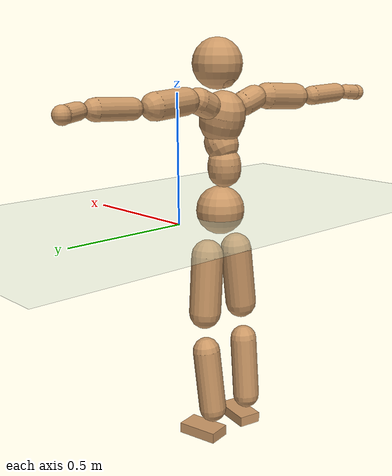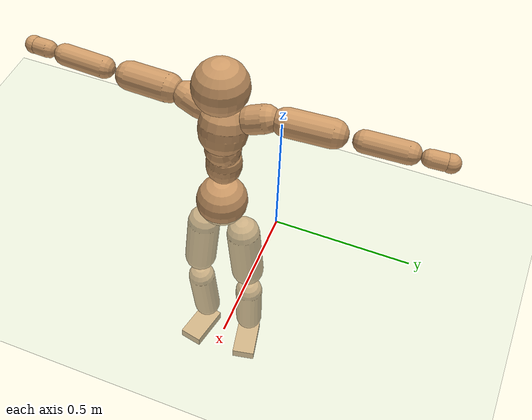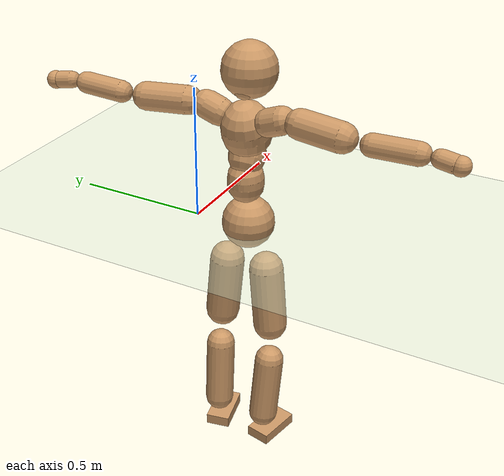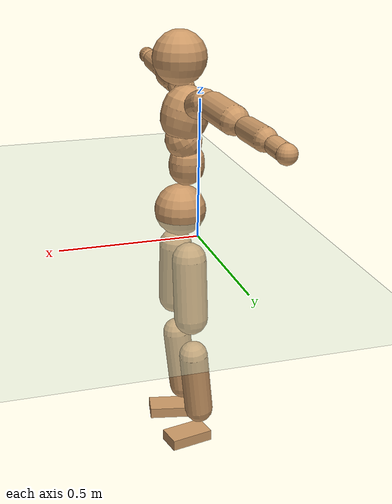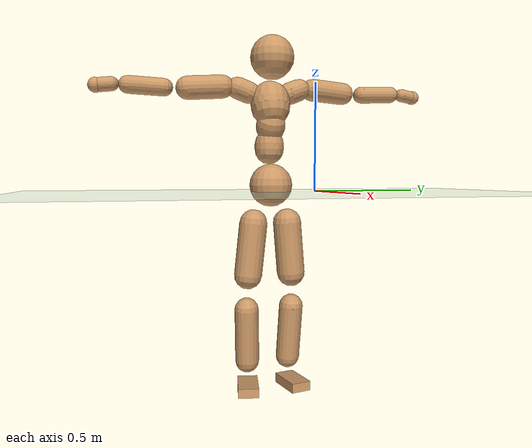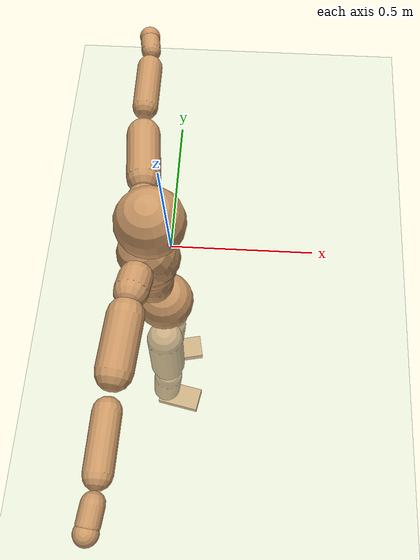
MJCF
<mujoco model="humanoid">
  <compiler coordinate="local"/>
  <default>
    <joint damping="0.0" armature="0.01" stiffness="0.0" limited="true"/>
    <geom conaffinity="1" condim="3" contype="7" margin="0.001" rgba="0.8 0.6 .4 1"/>
  </default>
  <asset>
    <texture type="skybox" builtin="gradient" rgb1=".4 .5 .6" rgb2="0 0 0" width="100" height="100"/>
    <texture builtin="flat" height="1278" mark="cross" markrgb="1 1 1" name="texgeom" random="0.01" rgb1="0.8 0.6 0.4" rgb2="0.8 0.6 0.4" type="cube" width="127"/>
    <texture builtin="checker" height="100" name="texplane" rgb1="0 0 0" rgb2="0.8 0.8 0.8" type="2d" width="100"/>
    <material name="MatPlane" reflectance="0.5" shininess="1" specular="1" texrepeat="60 60" texture="texplane"/>
    <material name="geom" texture="texgeom" texuniform="true"/>
  </asset>
  <worldbody>
    <light cutoff="100" diffuse="1 1 1" dir="-0 0 -1.3" directional="true" exponent="1" pos="0 0 1.3" specular=".1 .1 .1"/>
    <geom conaffinity="1" condim="3" name="floor" pos="0 0 0" rgba="0.8 0.9 0.8 1" size="100 100 .2" type="plane" material="MatPlane"/>
    <body name="Pelvis" pos="-0.0007 -0.2155 0.0268">
      <freejoint name="Pelvis"/>
      <geom type="sphere" contype="1" conaffinity="1" density="500" size="0.0976" pos="0.0000 0.0000 0.0000" name="Pelvis"/>
      <body name="L_Hip" pos="-0.0101 0.0751 -0.0949">
        <joint name="L_Hip_x" type="hinge" pos="0 0 0" axis="1 0 0" stiffness="800" damping="80" armature="0.02" range="-180.0000 180.0000"/>
        <joint name="L_Hip_y" type="hinge" pos="0 0 0" axis="0 1 0" stiffness="800" damping="80" armature="0.02" range="-180.0000 180.0000"/>
        <joint name="L_Hip_z" type="hinge" pos="0 0 0" axis="0 0 1" stiffness="800" damping="80" armature="0.02" range="-180.0000 180.0000"/>
        <geom type="capsule" contype="1" conaffinity="1" density="500" fromto="-0.0015 0.0068 -0.0787 -0.0059 0.0270 -0.3150" size="0.0648" name="L_Hip"/>
        <body name="L_Knee" pos="-0.0074 0.0338 -0.3937">
          <joint name="L_Knee_x" type="hinge" pos="0 0 0" axis="1 0 0" stiffness="800" damping="80" armature="0.02" range="-180.0000 180.0000"/>
          <joint name="L_Knee_y" type="hinge" pos="0 0 0" axis="0 1 0" stiffness="800" damping="80" armature="0.02" range="-180.0000 180.0000"/>
          <joint name="L_Knee_z" type="hinge" pos="0 0 0" axis="0 0 1" stiffness="800" damping="80" armature="0.02" range="-180.0000 180.0000"/>
          <geom type="capsule" contype="1" conaffinity="1" density="500" fromto="-0.0096 -0.0025 -0.0832 -0.0385 -0.0098 -0.3330" size="0.0557" name="L_Knee"/>
          <body name="L_Ankle" pos="-0.0481 -0.0123 -0.4162">
            <joint name="L_Ankle_x" type="hinge" pos="0 0 0" axis="1 0 0" stiffness="800" damping="80" armature="0.02" range="-180.0000 180.0000"/>
            <joint name="L_Ankle_y" type="hinge" pos="0 0 0" axis="0 1 0" stiffness="800" damping="80" armature="0.02" range="-180.0000 180.0000"/>
            <joint name="L_Ankle_z" type="hinge" pos="0 0 0" axis="0 0 1" stiffness="800" damping="80" armature="0.02" range="-180.0000 180.0000"/>
            <geom type="box" contype="1" conaffinity="1" density="500" pos="0.0599 0.0120 -0.0291" size="0.0853 0.0467 0.0216" quat="0.9951 0.0000 0.0000 0.0991" name="L_Ankle"/>
            <body name="L_Toe" pos="0.1198 0.0241 -0.0583">
              <joint name="L_Toe_x" type="hinge" pos="0 0 0" axis="1 0 0" stiffness="500" damping="50" armature="0.02" range="-180.0000 180.0000"/>
              <joint name="L_Toe_y" type="hinge" pos="0 0 0" axis="0 1 0" stiffness="500" damping="50" armature="0.02" range="-180.0000 180.0000"/>
              <joint name="L_Toe_z" type="hinge" pos="0 0 0" axis="0 0 1" stiffness="500" damping="50" armature="0.02" range="-180.0000 180.0000"/>
              <geom type="box" contype="1" conaffinity="1" density="500" pos="0.0000 0.0000 0.0285" size="0.001 0.0023 0.001" quat="0.9944 0.0000 0.0000 0.1053" name="L_Toe"/>
            </body>
          </body>
        </body>
      </body>
      <body name="R_Hip" pos="-0.0062 -0.0723 -0.0943">
        <joint name="R_Hip_x" type="hinge" pos="0 0 0" axis="1 0 0" stiffness="800" damping="80" armature="0.02" range="-180.0000 180.0000"/>
        <joint name="R_Hip_y" type="hinge" pos="0 0 0" axis="0 1 0" stiffness="800" damping="80" armature="0.02" range="-180.0000 180.0000"/>
        <joint name="R_Hip_z" type="hinge" pos="0 0 0" axis="0 0 1" stiffness="800" damping="80" armature="0.02" range="-180.0000 180.0000"/>
        <geom type="capsule" contype="1" conaffinity="1" density="500" fromto="-0.0021 -0.0081 -0.0800 -0.0082 -0.0322 -0.3201" size="0.064" name="R_Hip"/>
        <body name="R_Knee" pos="-0.0103 -0.0403 -0.4001">
          <joint name="R_Knee_x" type="hinge" pos="0 0 0" axis="1 0 0" stiffness="800" damping="80" armature="0.02" range="-180.0000 180.0000"/>
          <joint name="R_Knee_y" type="hinge" pos="0 0 0" axis="0 1 0" stiffness="800" damping="80" armature="0.02" range="-180.0000 180.0000"/>
          <joint name="R_Knee_z" type="hinge" pos="0 0 0" axis="0 0 1" stiffness="800" damping="80" armature="0.02" range="-180.0000 180.0000"/>
          <geom type="capsule" contype="1" conaffinity="1" density="500" fromto="-0.0092 0.0030 -0.0832 -0.0369 0.0121 -0.3329" size="0.0558" name="R_Knee"/>
          <body name="R_Ankle" pos="-0.0461 0.0151 -0.4162">
            <joint name="R_Ankle_x" type="hinge" pos="0 0 0" axis="1 0 0" stiffness="800" damping="80" armature="0.02" range="-180.0000 180.0000"/>
            <joint name="R_Ankle_y" type="hinge" pos="0 0 0" axis="0 1 0" stiffness="800" damping="80" armature="0.02" range="-180.0000 180.0000"/>
            <joint name="R_Ankle_z" type="hinge" pos="0 0 0" axis="0 0 1" stiffness="800" damping="80" armature="0.02" range="-180.0000 180.0000"/>
            <geom type="box" contype="1" conaffinity="1" density="500" pos="0.0617 -0.0124 -0.0252" size="0.0868 0.0472 0.0213" quat="0.9951 0.0000 0.0000 -0.0992" name="R_Ankle"/>
            <body name="R_Toe" pos="0.1235 -0.0249 -0.0503">
              <joint name="R_Toe_x" type="hinge" pos="0 0 0" axis="1 0 0" stiffness="500" damping="50" armature="0.02" range="-180.0000 180.0000"/>
              <joint name="R_Toe_y" type="hinge" pos="0 0 0" axis="0 1 0" stiffness="500" damping="50" armature="0.02" range="-180.0000 180.0000"/>
              <joint name="R_Toe_z" type="hinge" pos="0 0 0" axis="0 0 1" stiffness="500" damping="50" armature="0.02" range="-180.0000 180.0000"/>
              <geom type="box" contype="1" conaffinity="1" density="500" pos="0.0000 0.0000 0.0271" size="0.0009 0.0023 0.0012" quat="0.9959 0.0000 0.0000 -0.0900" name="R_Toe"/>
            </body>
          </body>
        </body>
      </body>
      <body name="Torso" pos="-0.0225 -0.0026 0.1094">
        <joint name="Torso_x" type="hinge" pos="0 0 0" axis="1 0 0" stiffness="1000" damping="100" armature="0.02" range="-180.0000 180.0000"/>
        <joint name="Torso_y" type="hinge" pos="0 0 0" axis="0 1 0" stiffness="1000" damping="100" armature="0.02" range="-180.0000 180.0000"/>
        <joint name="Torso_z" type="hinge" pos="0 0 0" axis="0 0 1" stiffness="1000" damping="100" armature="0.02" range="-180.0000 180.0000"/>
        <geom type="capsule" contype="1" conaffinity="1" density="500" fromto="-0.0011 0.0022 0.0801 -0.0007 0.0015 0.0534" size="0.066681" name="Torso"/>
        <body name="Spine" pos="-0.0018 0.0036 0.1334">
          <joint name="Spine_x" type="hinge" pos="0 0 0" axis="1 0 0" stiffness="1000" damping="100" armature="0.02" range="-180.0000 180.0000"/>
          <joint name="Spine_y" type="hinge" pos="0 0 0" axis="0 1 0" stiffness="1000" damping="100" armature="0.02" range="-180.0000 180.0000"/>
          <joint name="Spine_z" type="hinge" pos="0 0 0" axis="0 0 1" stiffness="1000" damping="100" armature="0.02" range="-180.0000 180.0000"/>
          <geom type="capsule" contype="1" conaffinity="1" density="500" fromto="0.0185 0.0010 0.0304 0.0123 0.0007 0.0202" size="0.066588" name="Spine"/>
          <body name="Chest" pos="0.0308 0.0017 0.0506">
            <joint name="Chest_x" type="hinge" pos="0 0 0" axis="1 0 0" stiffness="1000" damping="100" armature="0.02" range="-180.0000 180.0000"/>
            <joint name="Chest_y" type="hinge" pos="0 0 0" axis="0 1 0" stiffness="1000" damping="100" armature="0.02" range="-180.0000 180.0000"/>
            <joint name="Chest_z" type="hinge" pos="0 0 0" axis="0 0 1" stiffness="1000" damping="100" armature="0.02" range="-180.0000 180.0000"/>
            <geom type="capsule" contype="1" conaffinity="1" density="500" fromto="-0.0256 -0.0008 0.0909 -0.0171 -0.0005 0.0606" size="0.08928" name="Chest"/>
            <body name="Neck" pos="-0.0489 -0.0024 0.2153">
              <joint name="Neck_x" type="hinge" pos="0 0 0" axis="1 0 0" stiffness="500" damping="50" armature="0.02" range="-180.0000 180.0000"/>
              <joint name="Neck_y" type="hinge" pos="0 0 0" axis="0 1 0" stiffness="500" damping="50" armature="0.02" range="-180.0000 180.0000"/>
              <joint name="Neck_z" type="hinge" pos="0 0 0" axis="0 0 1" stiffness="500" damping="50" armature="0.02" range="-180.0000 180.0000"/>
              <geom type="capsule" contype="1" conaffinity="1" density="500" fromto="0.0104 0.0008 0.0130 0.0417 0.0030 0.0521" size="0.038595" name="Neck"/>
              <body name="Head" pos="0.0521 0.0038 0.0651">
                <joint name="Head_x" type="hinge" pos="0 0 0" axis="1 0 0" stiffness="500" damping="50" armature="0.02" range="-180.0000 180.0000"/>
                <joint name="Head_y" type="hinge" pos="0 0 0" axis="0 1 0" stiffness="500" damping="50" armature="0.02" range="-180.0000 180.0000"/>
                <joint name="Head_z" type="hinge" pos="0 0 0" axis="0 0 1" stiffness="500" damping="50" armature="0.02" range="-180.0000 180.0000"/>
                <geom type="sphere" contype="1" conaffinity="1" density="500" size="0.0992" pos="0.0000 0.0000 0.0000" name="Head"/>
              </body>
            </body>
            <body name="L_Thorax" pos="-0.0371 0.0756 0.1204">
              <joint name="L_Thorax_x" type="hinge" pos="0 0 0" axis="1 0 0" stiffness="500" damping="50" armature="0.02" range="-180.0000 180.0000"/>
              <joint name="L_Thorax_y" type="hinge" pos="0 0 0" axis="0 1 0" stiffness="500" damping="50" armature="0.02" range="-180.0000 180.0000"/>
              <joint name="L_Thorax_z" type="hinge" pos="0 0 0" axis="0 0 1" stiffness="500" damping="50" armature="0.02" range="-180.0000 180.0000"/>
              <geom type="capsule" contype="1" conaffinity="1" density="500" fromto="-0.0015 0.0168 0.0067 -0.0060 0.0670 0.0267" size="0.0507" name="L_Thorax"/>
              <body name="L_Shoulder" pos="-0.0075 0.0838 0.0333">
                <joint name="L_Shoulder_x" type="hinge" pos="0 0 0" axis="1 0 0" stiffness="500" damping="50" armature="0.02" range="-720.0000 720.0000"/>
                <joint name="L_Shoulder_y" type="hinge" pos="0 0 0" axis="0 1 0" stiffness="500" damping="50" armature="0.02" range="-720.0000 720.0000"/>
                <joint name="L_Shoulder_z" type="hinge" pos="0 0 0" axis="0 0 1" stiffness="500" damping="50" armature="0.02" range="-720.0000 720.0000"/>
                <geom type="capsule" contype="1" conaffinity="1" density="500" fromto="-0.0059 0.0528 -0.0030 -0.0237 0.2111 -0.0119" size="0.0515" name="L_Shoulder"/>
                <body name="L_Elbow" pos="-0.0297 0.2639 -0.0148">
                  <joint name="L_Elbow_x" type="hinge" pos="0 0 0" axis="1 0 0" stiffness="500" damping="50" armature="0.02" range="-720.0000 720.0000"/>
                  <joint name="L_Elbow_y" type="hinge" pos="0 0 0" axis="0 1 0" stiffness="500" damping="50" armature="0.02" range="-720.0000 720.0000"/>
                  <joint name="L_Elbow_z" type="hinge" pos="0 0 0" axis="0 0 1" stiffness="500" damping="50" armature="0.02" range="-720.0000 720.0000"/>
                  <geom type="capsule" contype="1" conaffinity="1" density="500" fromto="0.0001 0.0502 0.0021 0.0002 0.2006 0.0084" size="0.0398" name="L_Elbow"/>
                  <body name="L_Wrist" pos="0.0003 0.2508 0.0105">
                    <joint name="L_Wrist_x" type="hinge" pos="0 0 0" axis="1 0 0" stiffness="300" damping="30" armature="0.02" range="-180.0000 180.0000"/>
                    <joint name="L_Wrist_y" type="hinge" pos="0 0 0" axis="0 1 0" stiffness="300" damping="30" armature="0.02" range="-180.0000 180.0000"/>
                    <joint name="L_Wrist_z" type="hinge" pos="0 0 0" axis="0 0 1" stiffness="300" damping="30" armature="0.02" range="-180.0000 180.0000"/>
                    <geom type="capsule" contype="1" conaffinity="1" density="500" fromto="-0.0027 0.0165 -0.0020 -0.0110 0.0658 -0.0081" size="0.031" name="L_Wrist"/>
                    <body name="L_Hand" pos="-0.0137 0.0823 -0.0101">
                      <joint name="L_Hand_x" type="hinge" pos="0 0 0" axis="1 0 0" stiffness="300" damping="30" armature="0.02" range="-180.0000 180.0000"/>
                      <joint name="L_Hand_y" type="hinge" pos="0 0 0" axis="0 1 0" stiffness="300" damping="30" armature="0.02" range="-180.0000 180.0000"/>
                      <joint name="L_Hand_z" type="hinge" pos="0 0 0" axis="0 0 1" stiffness="300" damping="30" armature="0.02" range="-180.0000 180.0000"/>
                      <geom type="sphere" contype="1" conaffinity="1" density="500" size="0.0332" pos="0.0000 0.0000 0.0000" name="L_Hand"/>
                    </body>
                  </body>
                </body>
              </body>
            </body>
            <body name="R_Thorax" pos="-0.042 -0.0771 0.1187">
              <joint name="R_Thorax_x" type="hinge" pos="0 0 0" axis="1 0 0" stiffness="500" damping="50" armature="0.02" range="-180.0000 180.0000"/>
              <joint name="R_Thorax_y" type="hinge" pos="0 0 0" axis="0 1 0" stiffness="500" damping="50" armature="0.02" range="-180.0000 180.0000"/>
              <joint name="R_Thorax_z" type="hinge" pos="0 0 0" axis="0 0 1" stiffness="500" damping="50" armature="0.02" range="-180.0000 180.0000"/>
              <geom type="capsule" contype="1" conaffinity="1" density="500" fromto="-0.0016 -0.0175 0.0069 -0.0065 -0.0701 0.0276" size="0.0496" name="R_Thorax"/>
              <body name="R_Shoulder" pos="-0.0082 -0.0877 0.0345">
                <joint name="R_Shoulder_x" type="hinge" pos="0 0 0" axis="1 0 0" stiffness="500" damping="50" armature="0.02" range="-720.0000 720.0000"/>
                <joint name="R_Shoulder_y" type="hinge" pos="0 0 0" axis="0 1 0" stiffness="500" damping="50" armature="0.02" range="-720.0000 720.0000"/>
                <joint name="R_Shoulder_z" type="hinge" pos="0 0 0" axis="0 0 1" stiffness="500" damping="50" armature="0.02" range="-720.0000 720.0000"/>
                <geom type="capsule" contype="1" conaffinity="1" density="500" fromto="-0.0045 -0.0516 -0.0031 -0.0179 -0.2063 -0.0124" size="0.0529" name="R_Shoulder"/>
                <body name="R_Elbow" pos="-0.0223 -0.2578 -0.0155">
                  <joint name="R_Elbow_x" type="hinge" pos="0 0 0" axis="1 0 0" stiffness="500" damping="50" armature="0.02" range="-720.0000 720.0000"/>
                  <joint name="R_Elbow_y" type="hinge" pos="0 0 0" axis="0 1 0" stiffness="500" damping="50" armature="0.02" range="-720.0000 720.0000"/>
                  <joint name="R_Elbow_z" type="hinge" pos="0 0 0" axis="0 0 1" stiffness="500" damping="50" armature="0.02" range="-720.0000 720.0000"/>
                  <geom type="capsule" contype="1" conaffinity="1" density="500" fromto="-0.0007 -0.0517 0.0020 -0.0029 -0.2067 0.0078" size="0.0399" name="R_Elbow"/>
                  <body name="R_Wrist" pos="-0.0036 -0.2584 0.0098">
                    <joint name="R_Wrist_x" type="hinge" pos="0 0 0" axis="1 0 0" stiffness="300" damping="30" armature="0.02" range="-180.0000 180.0000"/>
                    <joint name="R_Wrist_y" type="hinge" pos="0 0 0" axis="0 1 0" stiffness="300" damping="30" armature="0.02" range="-180.0000 180.0000"/>
                    <joint name="R_Wrist_z" type="hinge" pos="0 0 0" axis="0 0 1" stiffness="300" damping="30" armature="0.02" range="-180.0000 180.0000"/>
                    <geom type="capsule" contype="1" conaffinity="1" density="500" fromto="-0.0022 -0.0166 -0.0015 -0.0087 -0.0663 -0.0060" size="0.0316" name="R_Wrist"/>
                    <body name="R_Hand" pos="-0.0108 -0.0828 -0.0075">
                      <joint name="R_Hand_x" type="hinge" pos="0 0 0" axis="1 0 0" stiffness="300" damping="30" armature="0.02" range="-180.0000 180.0000"/>
                      <joint name="R_Hand_y" type="hinge" pos="0 0 0" axis="0 1 0" stiffness="300" damping="30" armature="0.02" range="-180.0000 180.0000"/>
                      <joint name="R_Hand_z" type="hinge" pos="0 0 0" axis="0 0 1" stiffness="300" damping="30" armature="0.02" range="-180.0000 180.0000"/>
                      <geom type="sphere" contype="1" conaffinity="1" density="500" size="0.0333" pos="0.0000 0.0000 0.0000" name="R_Hand"/>
                    </body>
                  </body>
                </body>
              </body>
            </body>
          </body>
        </body>
      </body>
    </body>
  </worldbody>
  <actuator>
    <motor name="L_Hip_x" joint="L_Hip_x" gear="500"/>
    <motor name="L_Hip_y" joint="L_Hip_y" gear="500"/>
    <motor name="L_Hip_z" joint="L_Hip_z" gear="500"/>
    <motor name="L_Knee_x" joint="L_Knee_x" gear="500"/>
    <motor name="L_Knee_y" joint="L_Knee_y" gear="500"/>
    <motor name="L_Knee_z" joint="L_Knee_z" gear="500"/>
    <motor name="L_Ankle_x" joint="L_Ankle_x" gear="500"/>
    <motor name="L_Ankle_y" joint="L_Ankle_y" gear="500"/>
    <motor name="L_Ankle_z" joint="L_Ankle_z" gear="500"/>
    <motor name="L_Toe_x" joint="L_Toe_x" gear="500"/>
    <motor name="L_Toe_y" joint="L_Toe_y" gear="500"/>
    <motor name="L_Toe_z" joint="L_Toe_z" gear="500"/>
    <motor name="R_Hip_x" joint="R_Hip_x" gear="500"/>
    <motor name="R_Hip_y" joint="R_Hip_y" gear="500"/>
    <motor name="R_Hip_z" joint="R_Hip_z" gear="500"/>
    <motor name="R_Knee_x" joint="R_Knee_x" gear="500"/>
    <motor name="R_Knee_y" joint="R_Knee_y" gear="500"/>
    <motor name="R_Knee_z" joint="R_Knee_z" gear="500"/>
    <motor name="R_Ankle_x" joint="R_Ankle_x" gear="500"/>
    <motor name="R_Ankle_y" joint="R_Ankle_y" gear="500"/>
    <motor name="R_Ankle_z" joint="R_Ankle_z" gear="500"/>
    <motor name="R_Toe_x" joint="R_Toe_x" gear="500"/>
    <motor name="R_Toe_y" joint="R_Toe_y" gear="500"/>
    <motor name="R_Toe_z" joint="R_Toe_z" gear="500"/>
    <motor name="Torso_x" joint="Torso_x" gear="500"/>
    <motor name="Torso_y" joint="Torso_y" gear="500"/>
    <motor name="Torso_z" joint="Torso_z" gear="500"/>
    <motor name="Spine_x" joint="Spine_x" gear="500"/>
    <motor name="Spine_y" joint="Spine_y" gear="500"/>
    <motor name="Spine_z" joint="Spine_z" gear="500"/>
    <motor name="Chest_x" joint="Chest_x" gear="500"/>
    <motor name="Chest_y" joint="Chest_y" gear="500"/>
    <motor name="Chest_z" joint="Chest_z" gear="500"/>
    <motor name="Neck_x" joint="Neck_x" gear="500"/>
    <motor name="Neck_y" joint="Neck_y" gear="500"/>
    <motor name="Neck_z" joint="Neck_z" gear="500"/>
    <motor name="Head_x" joint="Head_x" gear="500"/>
    <motor name="Head_y" joint="Head_y" gear="500"/>
    <motor name="Head_z" joint="Head_z" gear="500"/>
    <motor name="L_Thorax_x" joint="L_Thorax_x" gear="500"/>
    <motor name="L_Thorax_y" joint="L_Thorax_y" gear="500"/>
    <motor name="L_Thorax_z" joint="L_Thorax_z" gear="500"/>
    <motor name="L_Shoulder_x" joint="L_Shoulder_x" gear="500"/>
    <motor name="L_Shoulder_y" joint="L_Shoulder_y" gear="500"/>
    <motor name="L_Shoulder_z" joint="L_Shoulder_z" gear="500"/>
    <motor name="L_Elbow_x" joint="L_Elbow_x" gear="500"/>
    <motor name="L_Elbow_y" joint="L_Elbow_y" gear="500"/>
    <motor name="L_Elbow_z" joint="L_Elbow_z" gear="500"/>
    <motor name="L_Wrist_x" joint="L_Wrist_x" gear="500"/>
    <motor name="L_Wrist_y" joint="L_Wrist_y" gear="500"/>
    <motor name="L_Wrist_z" joint="L_Wrist_z" gear="500"/>
    <motor name="L_Hand_x" joint="L_Hand_x" gear="500"/>
    <motor name="L_Hand_y" joint="L_Hand_y" gear="500"/>
    <motor name="L_Hand_z" joint="L_Hand_z" gear="500"/>
    <motor name="R_Thorax_x" joint="R_Thorax_x" gear="500"/>
    <motor name="R_Thorax_y" joint="R_Thorax_y" gear="500"/>
    <motor name="R_Thorax_z" joint="R_Thorax_z" gear="500"/>
    <motor name="R_Shoulder_x" joint="R_Shoulder_x" gear="500"/>
    <motor name="R_Shoulder_y" joint="R_Shoulder_y" gear="500"/>
    <motor name="R_Shoulder_z" joint="R_Shoulder_z" gear="500"/>
    <motor name="R_Elbow_x" joint="R_Elbow_x" gear="500"/>
    <motor name="R_Elbow_y" joint="R_Elbow_y" gear="500"/>
    <motor name="R_Elbow_z" joint="R_Elbow_z" gear="500"/>
    <motor name="R_Wrist_x" joint="R_Wrist_x" gear="500"/>
    <motor name="R_Wrist_y" joint="R_Wrist_y" gear="500"/>
    <motor name="R_Wrist_z" joint="R_Wrist_z" gear="500"/>
    <motor name="R_Hand_x" joint="R_Hand_x" gear="500"/>
    <motor name="R_Hand_y" joint="R_Hand_y" gear="500"/>
    <motor name="R_Hand_z" joint="R_Hand_z" gear="500"/>
  </actuator>
  <contact>
    <exclude body1="Torso" body2="Chest"/>
    <exclude body1="Head" body2="Chest"/>
    <exclude body1="R_Knee" body2="R_Toe"/>
    <exclude body1="R_Knee" body2="L_Ankle"/>
    <exclude body1="R_Knee" body2="L_Toe"/>
    <exclude body1="L_Knee" body2="L_Toe"/>
    <exclude body1="L_Knee" body2="R_Ankle"/>
    <exclude body1="L_Knee" body2="R_Toe"/>
    <exclude body1="L_Shoulder" body2="Chest"/>
    <exclude body1="R_Shoulder" body2="Chest"/>
  </contact>
  <sensor/>
  <size njmax="700" nconmax="700"/>
</mujoco>
